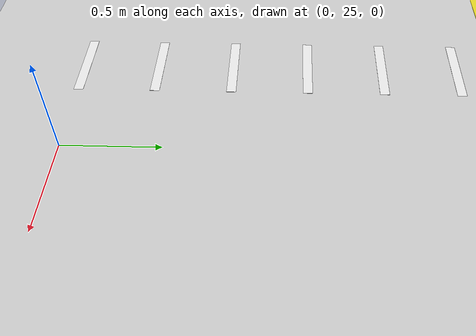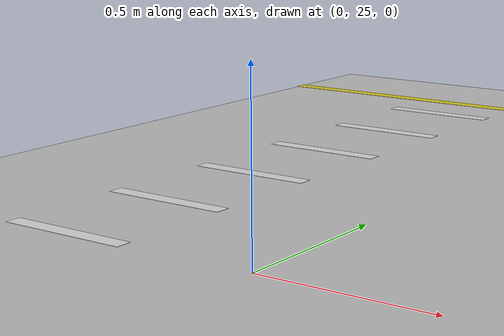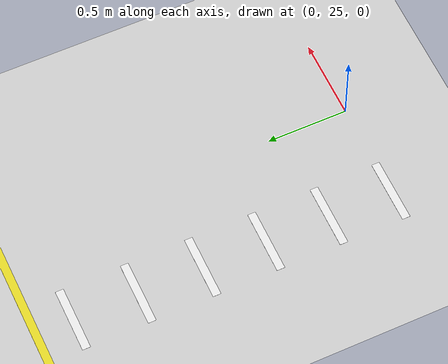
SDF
<sdf version="1.6">
 <world name="default">
  <model name="ground_plane">
   <static>1</static>
   <link name="link">
    <collision name="collision">
     <geometry><plane><normal>0 0 1</normal><size>100 100</size></plane></geometry>
     <surface><friction><ode><mu>100</mu><mu2>50</mu2></ode></friction></surface>
    </collision>
    <visual name="visual">
     <cast_shadows>0</cast_shadows>
     <geometry><plane><normal>0 0 1</normal><size>100 100</size></plane></geometry>
     <material>
      <script><uri>file://media/materials/scripts/gazebo.material</uri><name>Gazebo/Grey</name></script>
     </material>
    </visual>
   </link>
  </model>
  <model name="zebra_crossing_40cmx200cm_14">
   <link name="link_2">
    <inertial>
     <mass>1</mass>
     <inertia>
      <ixx>0.166667</ixx>
      <ixy>0</ixy>
      <ixz>0</ixz>
      <iyy>0.166667</iyy>
      <iyz>0</iyz>
      <izz>0.166667</izz>
     </inertia>
    </inertial>
    <visual name="ModelPreview_5::link_2::visual_1">
     <pose>-0.2 0 0 0 -0 0</pose>
     <geometry><box><size>0.05 0.4 0.001</size></box></geometry>
     <material>
      <lighting>1</lighting>
      <script><uri>file://media/materials/scripts/gazebo.material</uri><name>Gazebo/White</name></script>
     </material>
    </visual>
    <visual name="ModelPreview_5::link_2::visual_3">
     <pose>-0.6 0 0 0 -0 0</pose>
     <geometry><box><size>0.05 0.4 0.001</size></box></geometry>
     <material>
      <lighting>1</lighting>
      <script><uri>file://media/materials/scripts/gazebo.material</uri><name>Gazebo/White</name></script>
     </material>
    </visual>
    <visual name="ModelPreview_5::link_2::visual_4">
     <pose>1 0 0 0 -0 0</pose>
     <geometry><box><size>0.05 0.4 0.001</size></box></geometry>
     <material>
      <lighting>1</lighting>
      <script><uri>file://media/materials/scripts/gazebo.material</uri><name>Gazebo/White</name></script>
     </material>
    </visual>
    <visual name="visual">
     <pose>0.2 0 0 0 -0 0</pose>
     <geometry><box><size>0.05 0.4 0.001</size></box></geometry>
     <material>
      <lighting>1</lighting>
      <script><uri>file://media/materials/scripts/gazebo.material</uri><name>Gazebo/White</name></script>
     </material>
    </visual>
    <visual name="ModelPreview_5::link_2::visual_5">
     <pose>-1 0 0 0 -0 0</pose>
     <geometry><box><size>0.05 0.4 0.001</size></box></geometry>
     <material>
      <lighting>1</lighting>
      <script><uri>file://media/materials/scripts/gazebo.material</uri><name>Gazebo/White</name></script>
     </material>
    </visual>
    <visual name="ModelPreview_5::link_2::visual_2">
     <pose>0.6 0 0 0 -0 0</pose>
     <geometry><box><size>0.05 0.4 0.001</size></box></geometry>
     <material>
      <lighting>1</lighting>
      <script><uri>file://media/materials/scripts/gazebo.material</uri><name>Gazebo/White</name></script>
     </material>
    </visual>
    <collision name="collision_5">
     <pose>-1 0 0 0 -0 0</pose>
     <geometry><box><size>0.05 0.4 1e-05</size></box></geometry>
     <surface>
      <friction>
       <ode><mu>1</mu><mu2>1</mu2><fdir1>0 0 0</fdir1><slip1>0</slip1><slip2>0</slip2></ode>
       <torsional>
        <coefficient>1</coefficient>
        <patch_radius>0</patch_radius>
        <surface_radius>0</surface_radius>
        <use_patch_radius>1</use_patch_radius>
        <ode><slip>0</slip></ode>
       </torsional>
      </friction>
      <bounce><restitution_coefficient>0</restitution_coefficient><threshold>1e+06</threshold></bounce>
      <contact>
       <collide_without_contact>0</collide_without_contact>
       <collide_without_contact_bitmask>1</collide_without_contact_bitmask>
       <collide_bitmask>1</collide_bitmask>
       <ode>
        <soft_cfm>0</soft_cfm>
        <soft_erp>0.2</soft_erp>
        <kp>1e+13</kp>
        <kd>1</kd>
        <max_vel>0.01</max_vel>
        <min_depth>0</min_depth>
       </ode>
       <bullet>
        <split_impulse>1</split_impulse>
        <split_impulse_penetration_threshold>-0.01</split_impulse_penetration_threshold>
        <soft_cfm>0</soft_cfm>
        <soft_erp>0.2</soft_erp>
        <kp>1e+13</kp>
        <kd>1</kd>
       </bullet>
      </contact>
     </surface>
    </collision>
    <collision name="collision">
     <pose>0.2 0 0 0 -0 0</pose>
     <geometry><box><size>0.05 0.4 1e-05</size></box></geometry>
     <surface>
      <friction>
       <ode><mu>1</mu><mu2>1</mu2><fdir1>0 0 0</fdir1><slip1>0</slip1><slip2>0</slip2></ode>
       <torsional>
        <coefficient>1</coefficient>
        <patch_radius>0</patch_radius>
        <surface_radius>0</surface_radius>
        <use_patch_radius>1</use_patch_radius>
        <ode><slip>0</slip></ode>
       </torsional>
      </friction>
      <bounce><restitution_coefficient>0</restitution_coefficient><threshold>1e+06</threshold></bounce>
      <contact>
       <collide_without_contact>0</collide_without_contact>
       <collide_without_contact_bitmask>1</collide_without_contact_bitmask>
       <collide_bitmask>1</collide_bitmask>
       <ode>
        <soft_cfm>0</soft_cfm>
        <soft_erp>0.2</soft_erp>
        <kp>1e+13</kp>
        <kd>1</kd>
        <max_vel>0.01</max_vel>
        <min_depth>0</min_depth>
       </ode>
       <bullet>
        <split_impulse>1</split_impulse>
        <split_impulse_penetration_threshold>-0.01</split_impulse_penetration_threshold>
        <soft_cfm>0</soft_cfm>
        <soft_erp>0.2</soft_erp>
        <kp>1e+13</kp>
        <kd>1</kd>
       </bullet>
      </contact>
     </surface>
    </collision>
    <collision name="collision_3">
     <pose>-0.6 0 0 0 -0 0</pose>
     <geometry><box><size>0.05 0.4 1e-05</size></box></geometry>
     <surface>
      <friction>
       <ode><mu>1</mu><mu2>1</mu2><fdir1>0 0 0</fdir1><slip1>0</slip1><slip2>0</slip2></ode>
       <torsional>
        <coefficient>1</coefficient>
        <patch_radius>0</patch_radius>
        <surface_radius>0</surface_radius>
        <use_patch_radius>1</use_patch_radius>
        <ode><slip>0</slip></ode>
       </torsional>
      </friction>
      <bounce><restitution_coefficient>0</restitution_coefficient><threshold>1e+06</threshold></bounce>
      <contact>
       <collide_without_contact>0</collide_without_contact>
       <collide_without_contact_bitmask>1</collide_without_contact_bitmask>
       <collide_bitmask>1</collide_bitmask>
       <ode>
        <soft_cfm>0</soft_cfm>
        <soft_erp>0.2</soft_erp>
        <kp>1e+13</kp>
        <kd>1</kd>
        <max_vel>0.01</max_vel>
        <min_depth>0</min_depth>
       </ode>
       <bullet>
        <split_impulse>1</split_impulse>
        <split_impulse_penetration_threshold>-0.01</split_impulse_penetration_threshold>
        <soft_cfm>0</soft_cfm>
        <soft_erp>0.2</soft_erp>
        <kp>1e+13</kp>
        <kd>1</kd>
       </bullet>
      </contact>
     </surface>
    </collision>
    <collision name="collision_4">
     <pose>1 0 0 0 -0 0</pose>
     <geometry><box><size>0.05 0.4 1e-05</size></box></geometry>
     <surface>
      <friction>
       <ode><mu>1</mu><mu2>1</mu2><fdir1>0 0 0</fdir1><slip1>0</slip1><slip2>0</slip2></ode>
       <torsional>
        <coefficient>1</coefficient>
        <patch_radius>0</patch_radius>
        <surface_radius>0</surface_radius>
        <use_patch_radius>1</use_patch_radius>
        <ode><slip>0</slip></ode>
       </torsional>
      </friction>
      <bounce><restitution_coefficient>0</restitution_coefficient><threshold>1e+06</threshold></bounce>
      <contact>
       <collide_without_contact>0</collide_without_contact>
       <collide_without_contact_bitmask>1</collide_without_contact_bitmask>
       <collide_bitmask>1</collide_bitmask>
       <ode>
        <soft_cfm>0</soft_cfm>
        <soft_erp>0.2</soft_erp>
        <kp>1e+13</kp>
        <kd>1</kd>
        <max_vel>0.01</max_vel>
        <min_depth>0</min_depth>
       </ode>
       <bullet>
        <split_impulse>1</split_impulse>
        <split_impulse_penetration_threshold>-0.01</split_impulse_penetration_threshold>
        <soft_cfm>0</soft_cfm>
        <soft_erp>0.2</soft_erp>
        <kp>1e+13</kp>
        <kd>1</kd>
       </bullet>
      </contact>
     </surface>
    </collision>
    <collision name="collision_2">
     <pose>0.6 0 0 0 -0 0</pose>
     <geometry><box><size>0.05 0.4 1e-05</size></box></geometry>
     <surface>
      <friction>
       <ode><mu>1</mu><mu2>1</mu2><fdir1>0 0 0</fdir1><slip1>0</slip1><slip2>0</slip2></ode>
       <torsional>
        <coefficient>1</coefficient>
        <patch_radius>0</patch_radius>
        <surface_radius>0</surface_radius>
        <use_patch_radius>1</use_patch_radius>
        <ode><slip>0</slip></ode>
       </torsional>
      </friction>
      <bounce><restitution_coefficient>0</restitution_coefficient><threshold>1e+06</threshold></bounce>
      <contact>
       <collide_without_contact>0</collide_without_contact>
       <collide_without_contact_bitmask>1</collide_without_contact_bitmask>
       <collide_bitmask>1</collide_bitmask>
       <ode>
        <soft_cfm>0</soft_cfm>
        <soft_erp>0.2</soft_erp>
        <kp>1e+13</kp>
        <kd>1</kd>
        <max_vel>0.01</max_vel>
        <min_depth>0</min_depth>
       </ode>
       <bullet>
        <split_impulse>1</split_impulse>
        <split_impulse_penetration_threshold>-0.01</split_impulse_penetration_threshold>
        <soft_cfm>0</soft_cfm>
        <soft_erp>0.2</soft_erp>
        <kp>1e+13</kp>
        <kd>1</kd>
       </bullet>
      </contact>
     </surface>
    </collision>
    <collision name="collision_1">
     <pose>-0.2 0 0 0 -0 0</pose>
     <geometry><box><size>0.05 0.4 1e-05</size></box></geometry>
     <surface>
      <friction>
       <ode><mu>1</mu><mu2>1</mu2><fdir1>0 0 0</fdir1><slip1>0</slip1><slip2>0</slip2></ode>
       <torsional>
        <coefficient>1</coefficient>
        <patch_radius>0</patch_radius>
        <surface_radius>0</surface_radius>
        <use_patch_radius>1</use_patch_radius>
        <ode><slip>0</slip></ode>
       </torsional>
      </friction>
      <bounce><restitution_coefficient>0</restitution_coefficient><threshold>1e+06</threshold></bounce>
      <contact>
       <collide_without_contact>0</collide_without_contact>
       <collide_without_contact_bitmask>1</collide_without_contact_bitmask>
       <collide_bitmask>1</collide_bitmask>
       <ode>
        <soft_cfm>0</soft_cfm>
        <soft_erp>0.2</soft_erp>
        <kp>1e+13</kp>
        <kd>1</kd>
        <max_vel>0.01</max_vel>
        <min_depth>0</min_depth>
       </ode>
       <bullet>
        <split_impulse>1</split_impulse>
        <split_impulse_penetration_threshold>-0.01</split_impulse_penetration_threshold>
        <soft_cfm>0</soft_cfm>
        <soft_erp>0.2</soft_erp>
        <kp>1e+13</kp>
        <kd>1</kd>
       </bullet>
      </contact>
     </surface>
    </collision>
   </link>
   <static>1</static>
   <pose>-0.6 26 0 0 -0 1.5708</pose>
  </model>
  <model name="line3640cm">
   <link name="link_4">
    <inertial>
     <mass>1</mass>
     <inertia>
      <ixx>0.166667</ixx>
      <ixy>0</ixy>
      <ixz>0</ixz>
      <iyy>0.166667</iyy>
      <iyz>0</iyz>
      <izz>0.166667</izz>
     </inertia>
    </inertial>
    <visual name="visual">
     <pose>0 0 0 0 -0 1.5708</pose>
     <geometry><box><size>0.05 36.4 0.001</size></box></geometry>
     <material>
      <lighting>1</lighting>
      <script><uri>file://media/materials/scripts/gazebo.material</uri><name>Gazebo/Yellow</name></script>
     </material>
    </visual>
    <collision name="collision">
     <pose>0 0 0 0 -0 1.5708</pose>
     <geometry><box><size>0.05 36.4 1e-05</size></box></geometry>
     <surface>
      <friction>
       <ode><mu>1</mu><mu2>1</mu2><fdir1>0 0 0</fdir1><slip1>0</slip1><slip2>0</slip2></ode>
       <torsional>
        <coefficient>1</coefficient>
        <patch_radius>0</patch_radius>
        <surface_radius>0</surface_radius>
        <use_patch_radius>1</use_patch_radius>
        <ode><slip>0</slip></ode>
       </torsional>
      </friction>
      <bounce><restitution_coefficient>0</restitution_coefficient><threshold>1e+06</threshold></bounce>
      <contact>
       <collide_without_contact>0</collide_without_contact>
       <collide_without_contact_bitmask>1</collide_without_contact_bitmask>
       <collide_bitmask>1</collide_bitmask>
       <ode>
        <soft_cfm>0</soft_cfm>
        <soft_erp>0.2</soft_erp>
        <kp>1e+13</kp>
        <kd>1</kd>
        <max_vel>0.01</max_vel>
        <min_depth>0</min_depth>
       </ode>
       <bullet>
        <split_impulse>1</split_impulse>
        <split_impulse_penetration_threshold>-0.01</split_impulse_penetration_threshold>
        <soft_cfm>0</soft_cfm>
        <soft_erp>0.2</soft_erp>
        <kp>1e+13</kp>
        <kd>1</kd>
       </bullet>
      </contact>
     </surface>
    </collision>
   </link>
   <static>1</static>
   <pose>-0.95 27.225 0 0 -0 0</pose>
  </model>
 </world>
</sdf>
